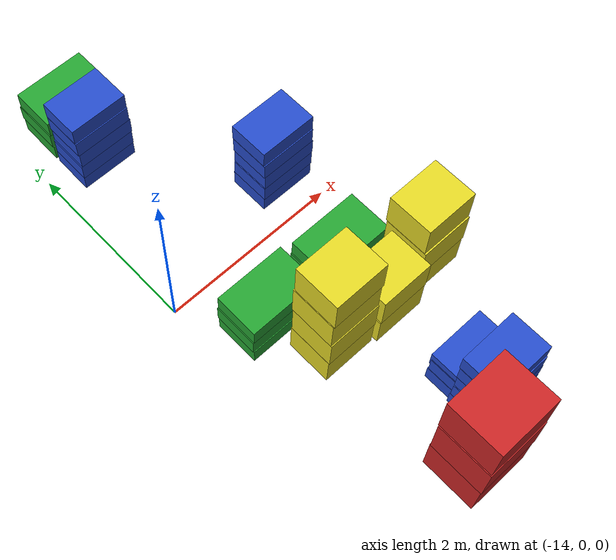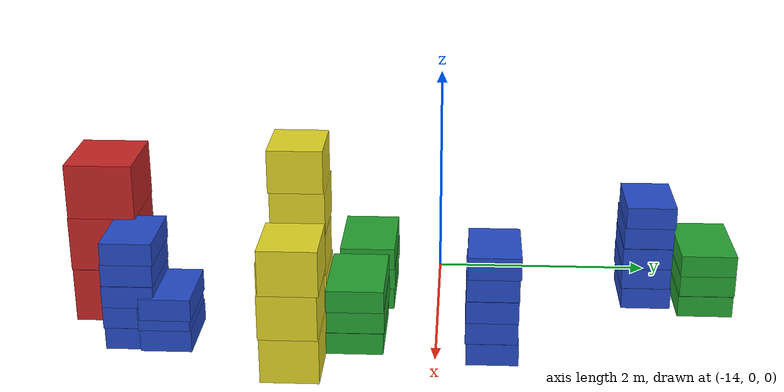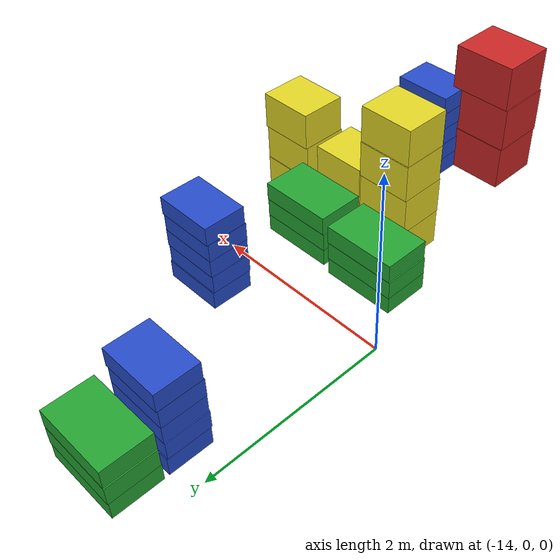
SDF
<sdf version="1.6">
 <world name="default">
  <include><uri>model://sun</uri></include>
  <model name="baggage_A_x3_0">
   <model name="baggage_A_0">
    <static>1</static>
    <link name="link">
     <collision name="collision"><geometry><box><size>0.7 0.6 0.5</size></box></geometry></collision>
     <visual name="visual">
      <geometry><box><size>0.7 0.6 0.5</size></box></geometry>
      <material>
       <script><uri>file://media/materials/scripts/gazebo.material</uri><name>Gazebo/Red</name></script>
      </material>
     </visual>
    </link>
    <pose>0 0 0.25 0 -0 0</pose>
   </model>
   <model name="baggage_A_1">
    <static>1</static>
    <link name="link">
     <collision name="collision"><geometry><box><size>0.7 0.6 0.5</size></box></geometry></collision>
     <visual name="visual">
      <geometry><box><size>0.7 0.6 0.5</size></box></geometry>
      <material>
       <script><uri>file://media/materials/scripts/gazebo.material</uri><name>Gazebo/Red</name></script>
      </material>
     </visual>
    </link>
    <pose>-0.006 -0.0077 0.75 0 -0 0</pose>
   </model>
   <model name="baggage_A_2">
    <static>1</static>
    <link name="link">
     <collision name="collision"><geometry><box><size>0.7 0.6 0.5</size></box></geometry></collision>
     <visual name="visual">
      <geometry><box><size>0.7 0.6 0.5</size></box></geometry>
      <material>
       <script><uri>file://media/materials/scripts/gazebo.material</uri><name>Gazebo/Red</name></script>
      </material>
     </visual>
    </link>
    <pose>0.0045 0.0005 1.25 0 -0 0</pose>
   </model>
   <pose>-12.9672 -2.99066 0 0 -0 0</pose>
  </model>
  <model name="baggage_B_x5_0">
   <model name="baggage_B_0">
    <static>1</static>
    <link name="link">
     <collision name="collision"><geometry><box><size>0.65 0.45 0.2</size></box></geometry></collision>
     <visual name="visual">
      <geometry><box><size>0.65 0.45 0.2</size></box></geometry>
      <material>
       <script><uri>file://media/materials/scripts/gazebo.material</uri><name>Gazebo/Blue</name></script>
      </material>
     </visual>
    </link>
    <pose>0 0 0.1 0 -0 0</pose>
   </model>
   <model name="baggage_B_1">
    <static>1</static>
    <link name="link">
     <collision name="collision"><geometry><box><size>0.65 0.45 0.2</size></box></geometry></collision>
     <visual name="visual">
      <geometry><box><size>0.65 0.45 0.2</size></box></geometry>
      <material>
       <script><uri>file://media/materials/scripts/gazebo.material</uri><name>Gazebo/Blue</name></script>
      </material>
     </visual>
    </link>
    <pose>-0.0014 -0.0091 0.3 0 -0 0</pose>
   </model>
   <model name="baggage_B_2">
    <static>1</static>
    <link name="link">
     <collision name="collision"><geometry><box><size>0.65 0.45 0.2</size></box></geometry></collision>
     <visual name="visual">
      <geometry><box><size>0.65 0.45 0.2</size></box></geometry>
      <material>
       <script><uri>file://media/materials/scripts/gazebo.material</uri><name>Gazebo/Blue</name></script>
      </material>
     </visual>
    </link>
    <pose>0.0076 -0.0066 0.5 0 -0 0</pose>
   </model>
   <model name="baggage_B_3">
    <static>1</static>
    <link name="link">
     <collision name="collision"><geometry><box><size>0.65 0.45 0.2</size></box></geometry></collision>
     <visual name="visual">
      <geometry><box><size>0.65 0.45 0.2</size></box></geometry>
      <material>
       <script><uri>file://media/materials/scripts/gazebo.material</uri><name>Gazebo/Blue</name></script>
      </material>
     </visual>
    </link>
    <pose>0 -0.0032 0.7 0 -0 0</pose>
   </model>
   <model name="baggage_B_4">
    <static>1</static>
    <link name="link">
     <collision name="collision"><geometry><box><size>0.65 0.45 0.2</size></box></geometry></collision>
     <visual name="visual">
      <geometry><box><size>0.65 0.45 0.2</size></box></geometry>
      <material>
       <script><uri>file://media/materials/scripts/gazebo.material</uri><name>Gazebo/Blue</name></script>
      </material>
     </visual>
    </link>
    <pose>0.0023 0.0073 0.9 0 -0 0</pose>
   </model>
   <pose>-12.3958 -2.65895 0 0 -0 0</pose>
  </model>
  <model name="baggage_B_x3_0">
   <model name="baggage_B_0">
    <static>1</static>
    <link name="link">
     <collision name="collision"><geometry><box><size>0.65 0.45 0.2</size></box></geometry></collision>
     <visual name="visual">
      <geometry><box><size>0.65 0.45 0.2</size></box></geometry>
      <material>
       <script><uri>file://media/materials/scripts/gazebo.material</uri><name>Gazebo/Blue</name></script>
      </material>
     </visual>
    </link>
    <pose>0 0 0.1 0 -0 0</pose>
   </model>
   <model name="baggage_B_1">
    <static>1</static>
    <link name="link">
     <collision name="collision"><geometry><box><size>0.65 0.45 0.2</size></box></geometry></collision>
     <visual name="visual">
      <geometry><box><size>0.65 0.45 0.2</size></box></geometry>
      <material>
       <script><uri>file://media/materials/scripts/gazebo.material</uri><name>Gazebo/Blue</name></script>
      </material>
     </visual>
    </link>
    <pose>0.0028 -0.0086 0.3 0 -0 0</pose>
   </model>
   <model name="baggage_B_2">
    <static>1</static>
    <link name="link">
     <collision name="collision"><geometry><box><size>0.65 0.45 0.2</size></box></geometry></collision>
     <visual name="visual">
      <geometry><box><size>0.65 0.45 0.2</size></box></geometry>
      <material>
       <script><uri>file://media/materials/scripts/gazebo.material</uri><name>Gazebo/Blue</name></script>
      </material>
     </visual>
    </link>
    <pose>0.0092 0.006 0.4 0 -0 0</pose>
   </model>
   <pose>-12.3653 -2.347 0 0 -0 0</pose>
  </model>
  <model name="baggage_C_x3_0">
   <model name="baggage_C_0">
    <static>1</static>
    <link name="link">
     <collision name="collision"><geometry><box><size>0.6 0.5 0.4</size></box></geometry></collision>
     <visual name="visual">
      <geometry><box><size>0.6 0.5 0.4</size></box></geometry>
      <material>
       <script><uri>file://media/materials/scripts/gazebo.material</uri><name>Gazebo/Yellow</name></script>
      </material>
     </visual>
    </link>
    <pose>0 0 0.2 0 -0 0</pose>
   </model>
   <model name="baggage_C_1">
    <static>1</static>
    <link name="link">
     <collision name="collision"><geometry><box><size>0.6 0.5 0.4</size></box></geometry></collision>
     <visual name="visual">
      <geometry><box><size>0.6 0.5 0.4</size></box></geometry>
      <material>
       <script><uri>file://media/materials/scripts/gazebo.material</uri><name>Gazebo/Yellow</name></script>
      </material>
     </visual>
    </link>
    <pose>0.0062 -0.0069 0.6 0 -0 0</pose>
   </model>
   <model name="baggage_C_2">
    <static>1</static>
    <link name="link">
     <collision name="collision"><geometry><box><size>0.6 0.5 0.4</size></box></geometry></collision>
     <visual name="visual">
      <geometry><box><size>0.6 0.5 0.4</size></box></geometry>
      <material>
       <script><uri>file://media/materials/scripts/gazebo.material</uri><name>Gazebo/Yellow</name></script>
      </material>
     </visual>
    </link>
    <pose>0.0089 0.0083 1 0 -0 0</pose>
   </model>
   <pose>-11.8281 -1.20127 0 0 -0 0</pose>
  </model>
  <model name="baggage_C_x2">
   <model name="baggage_C_0">
    <static>1</static>
    <link name="link">
     <collision name="collision"><geometry><box><size>0.6 0.5 0.4</size></box></geometry></collision>
     <visual name="visual">
      <geometry><box><size>0.6 0.5 0.4</size></box></geometry>
      <material>
       <script><uri>file://media/materials/scripts/gazebo.material</uri><name>Gazebo/Yellow</name></script>
      </material>
     </visual>
    </link>
    <pose>0 0 0.2 0 -0 0</pose>
   </model>
   <model name="baggage_C_1">
    <static>1</static>
    <link name="link">
     <collision name="collision"><geometry><box><size>0.6 0.5 0.4</size></box></geometry></collision>
     <visual name="visual">
      <geometry><box><size>0.6 0.5 0.4</size></box></geometry>
      <material>
       <script><uri>file://media/materials/scripts/gazebo.material</uri><name>Gazebo/Yellow</name></script>
      </material>
     </visual>
    </link>
    <pose>0.0093 -0.002 0.6 0 -0 0</pose>
   </model>
   <pose>-12.4698 -1.30971 0 0 -0 0</pose>
  </model>
  <model name="baggage_C_x4">
   <model name="baggage_C_0">
    <static>1</static>
    <link name="link">
     <collision name="collision"><geometry><box><size>0.6 0.5 0.4</size></box></geometry></collision>
     <visual name="visual">
      <geometry><box><size>0.6 0.5 0.4</size></box></geometry>
      <material>
       <script><uri>file://media/materials/scripts/gazebo.material</uri><name>Gazebo/Yellow</name></script>
      </material>
     </visual>
    </link>
    <pose>0 0 0.2 0 -0 0</pose>
   </model>
   <model name="baggage_C_1">
    <static>1</static>
    <link name="link">
     <collision name="collision"><geometry><box><size>0.6 0.5 0.4</size></box></geometry></collision>
     <visual name="visual">
      <geometry><box><size>0.6 0.5 0.4</size></box></geometry>
      <material>
       <script><uri>file://media/materials/scripts/gazebo.material</uri><name>Gazebo/Yellow</name></script>
      </material>
     </visual>
    </link>
    <pose>0.0008 -0.0083 0.6 0 -0 0</pose>
   </model>
   <model name="baggage_C_2">
    <static>1</static>
    <link name="link">
     <collision name="collision"><geometry><box><size>0.6 0.5 0.4</size></box></geometry></collision>
     <visual name="visual">
      <geometry><box><size>0.6 0.5 0.4</size></box></geometry>
      <material>
       <script><uri>file://media/materials/scripts/gazebo.material</uri><name>Gazebo/Yellow</name></script>
      </material>
     </visual>
    </link>
    <pose>0.0001 0.0014 1 0 -0 0</pose>
   </model>
   <model name="baggage_C_3">
    <static>1</static>
    <link name="link">
     <collision name="collision"><geometry><box><size>0.6 0.5 0.4</size></box></geometry></collision>
     <visual name="visual">
      <geometry><box><size>0.6 0.5 0.4</size></box></geometry>
      <material>
       <script><uri>file://media/materials/scripts/gazebo.material</uri><name>Gazebo/Yellow</name></script>
      </material>
     </visual>
    </link>
    <pose>0.007 -0.0089 1.4 0 -0 0</pose>
   </model>
   <pose>-13.1083 -1.26847 0 0 -0 0</pose>
  </model>
  <model name="baggage_D_x3_0">
   <model name="baggage_D_0">
    <static>1</static>
    <link name="link">
     <collision name="collision"><geometry><box><size>0.8 0.5 0.2</size></box></geometry></collision>
     <visual name="visual">
      <geometry><box><size>0.8 0.5 0.2</size></box></geometry>
      <material>
       <script><uri>file://media/materials/scripts/gazebo.material</uri><name>Gazebo/Green</name></script>
      </material>
     </visual>
    </link>
    <pose>0 0 0.1 0 -0 0</pose>
   </model>
   <model name="baggage_D_1">
    <static>1</static>
    <link name="link">
     <collision name="collision"><geometry><box><size>0.8 0.5 0.2</size></box></geometry></collision>
     <visual name="visual">
      <geometry><box><size>0.8 0.5 0.2</size></box></geometry>
      <material>
       <script><uri>file://media/materials/scripts/gazebo.material</uri><name>Gazebo/Green</name></script>
      </material>
     </visual>
    </link>
    <pose>-0.0056 0.0083 0.3 0 -0 0</pose>
   </model>
   <model name="baggage_D_2">
    <static>1</static>
    <link name="link">
     <collision name="collision"><geometry><box><size>0.8 0.5 0.2</size></box></geometry></collision>
     <visual name="visual">
      <geometry><box><size>0.8 0.5 0.2</size></box></geometry>
      <material>
       <script><uri>file://media/materials/scripts/gazebo.material</uri><name>Gazebo/Green</name></script>
      </material>
     </visual>
    </link>
    <pose>0.0053 0.0057 0.5 0 -0 0</pose>
   </model>
   <pose>-12.466 -0.703041 0 0 -0 0</pose>
  </model>
  <model name="baggage_D_x3_1">
   <model name="baggage_D_0">
    <static>1</static>
    <link name="link">
     <collision name="collision"><geometry><box><size>0.8 0.5 0.2</size></box></geometry></collision>
     <visual name="visual">
      <geometry><box><size>0.8 0.5 0.2</size></box></geometry>
      <material>
       <script><uri>file://media/materials/scripts/gazebo.material</uri><name>Gazebo/Green</name></script>
      </material>
     </visual>
    </link>
    <pose>0 0 0.1 0 -0 0</pose>
   </model>
   <model name="baggage_D_1">
    <static>1</static>
    <link name="link">
     <collision name="collision"><geometry><box><size>0.8 0.5 0.2</size></box></geometry></collision>
     <visual name="visual">
      <geometry><box><size>0.8 0.5 0.2</size></box></geometry>
      <material>
       <script><uri>file://media/materials/scripts/gazebo.material</uri><name>Gazebo/Green</name></script>
      </material>
     </visual>
    </link>
    <pose>-0.0056 0.0083 0.3 0 -0 0</pose>
   </model>
   <model name="baggage_D_2">
    <static>1</static>
    <link name="link">
     <collision name="collision"><geometry><box><size>0.8 0.5 0.2</size></box></geometry></collision>
     <visual name="visual">
      <geometry><box><size>0.8 0.5 0.2</size></box></geometry>
      <material>
       <script><uri>file://media/materials/scripts/gazebo.material</uri><name>Gazebo/Green</name></script>
      </material>
     </visual>
    </link>
    <pose>0.0053 0.0057 0.5 0 -0 0</pose>
   </model>
   <pose>-13.376 -0.65813 0 0 -0 0</pose>
  </model>
  <model name="baggage_B_x5_4">
   <model name="baggage_B_0">
    <static>1</static>
    <link name="link">
     <collision name="collision"><geometry><box><size>0.65 0.45 0.2</size></box></geometry></collision>
     <visual name="visual">
      <geometry><box><size>0.65 0.45 0.2</size></box></geometry>
      <material>
       <script><uri>file://media/materials/scripts/gazebo.material</uri><name>Gazebo/Blue</name></script>
      </material>
     </visual>
    </link>
    <pose>0 0 0.1 0 -0 0</pose>
   </model>
   <model name="baggage_B_1">
    <static>1</static>
    <link name="link">
     <collision name="collision"><geometry><box><size>0.65 0.45 0.2</size></box></geometry></collision>
     <visual name="visual">
      <geometry><box><size>0.65 0.45 0.2</size></box></geometry>
      <material>
       <script><uri>file://media/materials/scripts/gazebo.material</uri><name>Gazebo/Blue</name></script>
      </material>
     </visual>
    </link>
    <pose>-0.0014 -0.0091 0.3 0 -0 0</pose>
   </model>
   <model name="baggage_B_2">
    <static>1</static>
    <link name="link">
     <collision name="collision"><geometry><box><size>0.65 0.45 0.2</size></box></geometry></collision>
     <visual name="visual">
      <geometry><box><size>0.65 0.45 0.2</size></box></geometry>
      <material>
       <script><uri>file://media/materials/scripts/gazebo.material</uri><name>Gazebo/Blue</name></script>
      </material>
     </visual>
    </link>
    <pose>0.0076 -0.0066 0.5 0 -0 0</pose>
   </model>
   <model name="baggage_B_3">
    <static>1</static>
    <link name="link">
     <collision name="collision"><geometry><box><size>0.65 0.45 0.2</size></box></geometry></collision>
     <visual name="visual">
      <geometry><box><size>0.65 0.45 0.2</size></box></geometry>
      <material>
       <script><uri>file://media/materials/scripts/gazebo.material</uri><name>Gazebo/Blue</name></script>
      </material>
     </visual>
    </link>
    <pose>0 -0.0032 0.7 0 -0 0</pose>
   </model>
   <model name="baggage_B_4">
    <static>1</static>
    <link name="link">
     <collision name="collision"><geometry><box><size>0.65 0.45 0.2</size></box></geometry></collision>
     <visual name="visual">
      <geometry><box><size>0.65 0.45 0.2</size></box></geometry>
      <material>
       <script><uri>file://media/materials/scripts/gazebo.material</uri><name>Gazebo/Blue</name></script>
      </material>
     </visual>
    </link>
    <pose>0.0023 0.0073 0.9 0 -0 0</pose>
   </model>
   <pose>-12.2401 0.487142 0 0 -0 0</pose>
  </model>
  <model name="baggage_B_x5_6">
   <model name="baggage_B_0">
    <static>1</static>
    <link name="link">
     <collision name="collision"><geometry><box><size>0.65 0.45 0.2</size></box></geometry></collision>
     <visual name="visual">
      <geometry><box><size>0.65 0.45 0.2</size></box></geometry>
      <material>
       <script><uri>file://media/materials/scripts/gazebo.material</uri><name>Gazebo/Blue</name></script>
      </material>
     </visual>
    </link>
    <pose>0 0 0.1 0 -0 0</pose>
   </model>
   <model name="baggage_B_1">
    <static>1</static>
    <link name="link">
     <collision name="collision"><geometry><box><size>0.65 0.45 0.2</size></box></geometry></collision>
     <visual name="visual">
      <geometry><box><size>0.65 0.45 0.2</size></box></geometry>
      <material>
       <script><uri>file://media/materials/scripts/gazebo.material</uri><name>Gazebo/Blue</name></script>
      </material>
     </visual>
    </link>
    <pose>-0.0014 -0.0091 0.3 0 -0 0</pose>
   </model>
   <model name="baggage_B_2">
    <static>1</static>
    <link name="link">
     <collision name="collision"><geometry><box><size>0.65 0.45 0.2</size></box></geometry></collision>
     <visual name="visual">
      <geometry><box><size>0.65 0.45 0.2</size></box></geometry>
      <material>
       <script><uri>file://media/materials/scripts/gazebo.material</uri><name>Gazebo/Blue</name></script>
      </material>
     </visual>
    </link>
    <pose>0.0076 -0.0066 0.5 0 -0 0</pose>
   </model>
   <model name="baggage_B_3">
    <static>1</static>
    <link name="link">
     <collision name="collision"><geometry><box><size>0.65 0.45 0.2</size></box></geometry></collision>
     <visual name="visual">
      <geometry><box><size>0.65 0.45 0.2</size></box></geometry>
      <material>
       <script><uri>file://media/materials/scripts/gazebo.material</uri><name>Gazebo/Blue</name></script>
      </material>
     </visual>
    </link>
    <pose>0 -0.0032 0.7 0 -0 0</pose>
   </model>
   <model name="baggage_B_4">
    <static>1</static>
    <link name="link">
     <collision name="collision"><geometry><box><size>0.65 0.45 0.2</size></box></geometry></collision>
     <visual name="visual">
      <geometry><box><size>0.65 0.45 0.2</size></box></geometry>
      <material>
       <script><uri>file://media/materials/scripts/gazebo.material</uri><name>Gazebo/Blue</name></script>
      </material>
     </visual>
    </link>
    <pose>0.0023 0.0073 0.9 0 -0 0</pose>
   </model>
   <pose>-13.4176 1.92528 0 0 -0 0</pose>
  </model>
  <model name="baggage_D_x3_3">
   <model name="baggage_D_0">
    <static>1</static>
    <link name="link">
     <collision name="collision"><geometry><box><size>0.8 0.5 0.2</size></box></geometry></collision>
     <visual name="visual">
      <geometry><box><size>0.8 0.5 0.2</size></box></geometry>
      <material>
       <script><uri>file://media/materials/scripts/gazebo.material</uri><name>Gazebo/Green</name></script>
      </material>
     </visual>
    </link>
    <pose>0 0 0.1 0 -0 0</pose>
   </model>
   <model name="baggage_D_1">
    <static>1</static>
    <link name="link">
     <collision name="collision"><geometry><box><size>0.8 0.5 0.2</size></box></geometry></collision>
     <visual name="visual">
      <geometry><box><size>0.8 0.5 0.2</size></box></geometry>
      <material>
       <script><uri>file://media/materials/scripts/gazebo.material</uri><name>Gazebo/Green</name></script>
      </material>
     </visual>
    </link>
    <pose>-0.0056 0.0083 0.3 0 -0 0</pose>
   </model>
   <model name="baggage_D_2">
    <static>1</static>
    <link name="link">
     <collision name="collision"><geometry><box><size>0.8 0.5 0.2</size></box></geometry></collision>
     <visual name="visual">
      <geometry><box><size>0.8 0.5 0.2</size></box></geometry>
      <material>
       <script><uri>file://media/materials/scripts/gazebo.material</uri><name>Gazebo/Green</name></script>
      </material>
     </visual>
    </link>
    <pose>0.0053 0.0057 0.5 0 -0 0</pose>
   </model>
   <pose>-13.3434 2.44958 0 0 -0 0</pose>
  </model>
 </world>
</sdf>
